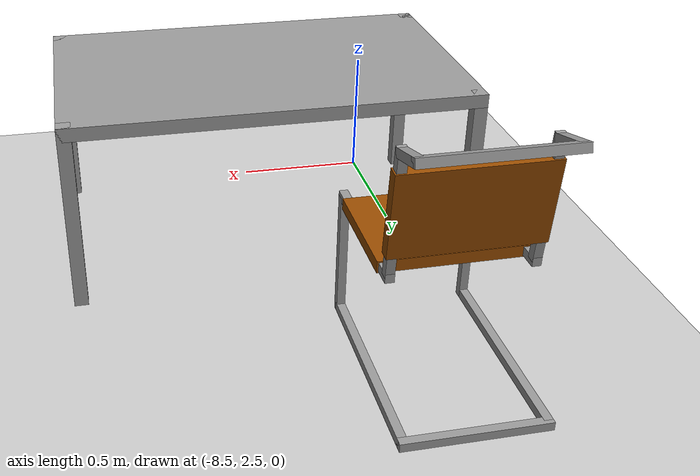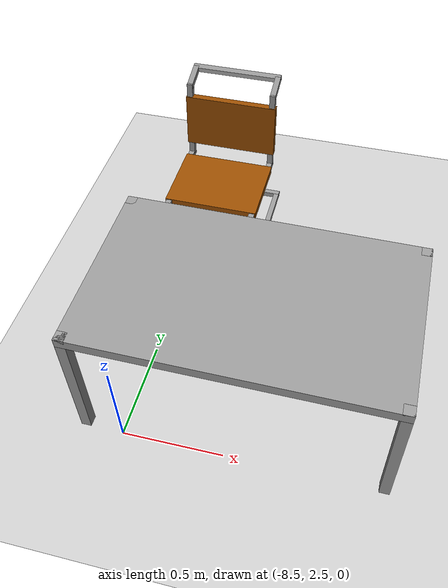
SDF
<sdf version="1.6">
 <world name="default">
  <model name="ground_plane">
   <static>1</static>
   <link name="link">
    <collision name="collision">
     <geometry><plane><normal>0 0 1</normal><size>100 100</size></plane></geometry>
     <surface><friction><ode><mu>100</mu><mu2>50</mu2></ode></friction></surface>
    </collision>
    <visual name="visual">
     <cast_shadows>0</cast_shadows>
     <geometry><plane><normal>0 0 1</normal><size>100 100</size></plane></geometry>
     <material>
      <script><uri>file://media/materials/scripts/gazebo.material</uri><name>Gazebo/Grey</name></script>
     </material>
    </visual>
   </link>
  </model>
  <model name="dining_table">
   <link name="link_0">
    <pose>0 0 0.675 0 -0 0</pose>
    <inertial>
     <mass>1</mass>
     <inertia>
      <ixx>0.166667</ixx>
      <ixy>0</ixy>
      <ixz>0</ixz>
      <iyy>0.166667</iyy>
      <iyz>0</iyz>
      <izz>0.166667</izz>
     </inertia>
    </inertial>
    <visual name="visual">
     <geometry><box><size>1.5 0.9 0.05</size></box></geometry>
     <material>
      <lighting>1</lighting>
      <script><uri>file://media/materials/scripts/gazebo.material</uri><name>Gazebo/Grey</name></script>
      <shader type="pixel"><normal_map>__default__</normal_map></shader>
      <ambient>1 1 1 1</ambient>
      <diffuse>0.7 0.7 0.7 1</diffuse>
      <specular>0.01 0.01 0.01 1</specular>
      <emissive>0 0 0 1</emissive>
     </material>
    </visual>
    <collision name="collision">
     <geometry><box><size>1.5 0.9 0.05</size></box></geometry>
     <surface>
      <friction>
       <ode><mu>1</mu><mu2>1</mu2><fdir1>0 0 0</fdir1><slip1>0</slip1><slip2>0</slip2></ode>
       <torsional>
        <coefficient>1</coefficient>
        <patch_radius>0</patch_radius>
        <surface_radius>0</surface_radius>
        <use_patch_radius>1</use_patch_radius>
        <ode><slip>0</slip></ode>
       </torsional>
      </friction>
      <bounce><restitution_coefficient>0</restitution_coefficient><threshold>1e+06</threshold></bounce>
      <contact>
       <collide_without_contact>0</collide_without_contact>
       <collide_without_contact_bitmask>1</collide_without_contact_bitmask>
       <collide_bitmask>1</collide_bitmask>
       <ode>
        <soft_cfm>0</soft_cfm>
        <soft_erp>0.2</soft_erp>
        <kp>1e+13</kp>
        <kd>1</kd>
        <max_vel>0.01</max_vel>
        <min_depth>0</min_depth>
       </ode>
       <bullet>
        <split_impulse>1</split_impulse>
        <split_impulse_penetration_threshold>-0.01</split_impulse_penetration_threshold>
        <soft_cfm>0</soft_cfm>
        <soft_erp>0.2</soft_erp>
        <kp>1e+13</kp>
        <kd>1</kd>
       </bullet>
      </contact>
     </surface>
    </collision>
   </link>
   <link name="link_1">
    <pose>-0.725 -0.425 0.35 0 -0 0</pose>
    <inertial>
     <mass>1</mass>
     <inertia>
      <ixx>0.166667</ixx>
      <ixy>0</ixy>
      <ixz>0</ixz>
      <iyy>0.166667</iyy>
      <iyz>0</iyz>
      <izz>0.166667</izz>
     </inertia>
    </inertial>
    <visual name="visual">
     <geometry><box><size>0.05 0.05 0.7</size></box></geometry>
     <material>
      <lighting>1</lighting>
      <script><uri>file://media/materials/scripts/gazebo.material</uri><name>Gazebo/Grey</name></script>
      <shader type="pixel"><normal_map>__default__</normal_map></shader>
      <ambient>1 1 1 1</ambient>
      <diffuse>0.7 0.7 0.7 1</diffuse>
      <specular>0.01 0.01 0.01 1</specular>
      <emissive>0 0 0 1</emissive>
     </material>
    </visual>
    <collision name="collision">
     <geometry><box><size>0.05 0.05 0.7</size></box></geometry>
     <surface>
      <friction>
       <ode><mu>1</mu><mu2>1</mu2><fdir1>0 0 0</fdir1><slip1>0</slip1><slip2>0</slip2></ode>
       <torsional>
        <coefficient>1</coefficient>
        <patch_radius>0</patch_radius>
        <surface_radius>0</surface_radius>
        <use_patch_radius>1</use_patch_radius>
        <ode><slip>0</slip></ode>
       </torsional>
      </friction>
      <bounce><restitution_coefficient>0</restitution_coefficient><threshold>1e+06</threshold></bounce>
      <contact>
       <collide_without_contact>0</collide_without_contact>
       <collide_without_contact_bitmask>1</collide_without_contact_bitmask>
       <collide_bitmask>1</collide_bitmask>
       <ode>
        <soft_cfm>0</soft_cfm>
        <soft_erp>0.2</soft_erp>
        <kp>1e+13</kp>
        <kd>1</kd>
        <max_vel>0.01</max_vel>
        <min_depth>0</min_depth>
       </ode>
       <bullet>
        <split_impulse>1</split_impulse>
        <split_impulse_penetration_threshold>-0.01</split_impulse_penetration_threshold>
        <soft_cfm>0</soft_cfm>
        <soft_erp>0.2</soft_erp>
        <kp>1e+13</kp>
        <kd>1</kd>
       </bullet>
      </contact>
     </surface>
    </collision>
   </link>
   <link name="link_1_clone">
    <pose>-0.725 0.425 0.35 0 -0 0</pose>
    <inertial>
     <mass>1</mass>
     <inertia>
      <ixx>0.166667</ixx>
      <ixy>0</ixy>
      <ixz>0</ixz>
      <iyy>0.166667</iyy>
      <iyz>0</iyz>
      <izz>0.166667</izz>
     </inertia>
    </inertial>
    <visual name="visual">
     <geometry><box><size>0.05 0.05 0.7</size></box></geometry>
     <material>
      <lighting>1</lighting>
      <script><uri>file://media/materials/scripts/gazebo.material</uri><name>Gazebo/Grey</name></script>
      <shader type="pixel"><normal_map>__default__</normal_map></shader>
      <ambient>1 1 1 1</ambient>
      <diffuse>0.7 0.7 0.7 1</diffuse>
      <specular>0.01 0.01 0.01 1</specular>
      <emissive>0 0 0 1</emissive>
     </material>
    </visual>
    <collision name="collision">
     <geometry><box><size>0.05 0.05 0.7</size></box></geometry>
     <surface>
      <friction>
       <ode><mu>1</mu><mu2>1</mu2><fdir1>0 0 0</fdir1><slip1>0</slip1><slip2>0</slip2></ode>
       <torsional>
        <coefficient>1</coefficient>
        <patch_radius>0</patch_radius>
        <surface_radius>0</surface_radius>
        <use_patch_radius>1</use_patch_radius>
        <ode><slip>0</slip></ode>
       </torsional>
      </friction>
      <bounce><restitution_coefficient>0</restitution_coefficient><threshold>1e+06</threshold></bounce>
      <contact>
       <collide_without_contact>0</collide_without_contact>
       <collide_without_contact_bitmask>1</collide_without_contact_bitmask>
       <collide_bitmask>1</collide_bitmask>
       <ode>
        <soft_cfm>0</soft_cfm>
        <soft_erp>0.2</soft_erp>
        <kp>1e+13</kp>
        <kd>1</kd>
        <max_vel>0.01</max_vel>
        <min_depth>0</min_depth>
       </ode>
       <bullet>
        <split_impulse>1</split_impulse>
        <split_impulse_penetration_threshold>-0.01</split_impulse_penetration_threshold>
        <soft_cfm>0</soft_cfm>
        <soft_erp>0.2</soft_erp>
        <kp>1e+13</kp>
        <kd>1</kd>
       </bullet>
      </contact>
     </surface>
    </collision>
   </link>
   <link name="link_1_clone_0">
    <pose>0.725 0.425 0.35 0 -0 0</pose>
    <inertial>
     <mass>1</mass>
     <inertia>
      <ixx>0.166667</ixx>
      <ixy>0</ixy>
      <ixz>0</ixz>
      <iyy>0.166667</iyy>
      <iyz>0</iyz>
      <izz>0.166667</izz>
     </inertia>
    </inertial>
    <visual name="visual">
     <geometry><box><size>0.05 0.05 0.7</size></box></geometry>
     <material>
      <lighting>1</lighting>
      <script><uri>file://media/materials/scripts/gazebo.material</uri><name>Gazebo/Grey</name></script>
      <shader type="pixel"><normal_map>__default__</normal_map></shader>
      <ambient>1 1 1 1</ambient>
      <diffuse>0.7 0.7 0.7 1</diffuse>
      <specular>0.01 0.01 0.01 1</specular>
      <emissive>0 0 0 1</emissive>
     </material>
    </visual>
    <collision name="collision">
     <geometry><box><size>0.05 0.05 0.7</size></box></geometry>
     <surface>
      <friction>
       <ode><mu>1</mu><mu2>1</mu2><fdir1>0 0 0</fdir1><slip1>0</slip1><slip2>0</slip2></ode>
       <torsional>
        <coefficient>1</coefficient>
        <patch_radius>0</patch_radius>
        <surface_radius>0</surface_radius>
        <use_patch_radius>1</use_patch_radius>
        <ode><slip>0</slip></ode>
       </torsional>
      </friction>
      <bounce><restitution_coefficient>0</restitution_coefficient><threshold>1e+06</threshold></bounce>
      <contact>
       <collide_without_contact>0</collide_without_contact>
       <collide_without_contact_bitmask>1</collide_without_contact_bitmask>
       <collide_bitmask>1</collide_bitmask>
       <ode>
        <soft_cfm>0</soft_cfm>
        <soft_erp>0.2</soft_erp>
        <kp>1e+13</kp>
        <kd>1</kd>
        <max_vel>0.01</max_vel>
        <min_depth>0</min_depth>
       </ode>
       <bullet>
        <split_impulse>1</split_impulse>
        <split_impulse_penetration_threshold>-0.01</split_impulse_penetration_threshold>
        <soft_cfm>0</soft_cfm>
        <soft_erp>0.2</soft_erp>
        <kp>1e+13</kp>
        <kd>1</kd>
       </bullet>
      </contact>
     </surface>
    </collision>
   </link>
   <link name="link_1_clone_1">
    <pose>0.725 -0.425 0.35 0 -0 0</pose>
    <inertial>
     <mass>1</mass>
     <inertia>
      <ixx>0.166667</ixx>
      <ixy>0</ixy>
      <ixz>0</ixz>
      <iyy>0.166667</iyy>
      <iyz>0</iyz>
      <izz>0.166667</izz>
     </inertia>
    </inertial>
    <visual name="visual">
     <geometry><box><size>0.05 0.05 0.7</size></box></geometry>
     <material>
      <lighting>1</lighting>
      <script><uri>file://media/materials/scripts/gazebo.material</uri><name>Gazebo/Grey</name></script>
      <shader type="pixel"><normal_map>__default__</normal_map></shader>
      <ambient>1 1 1 1</ambient>
      <diffuse>0.7 0.7 0.7 1</diffuse>
      <specular>0.01 0.01 0.01 1</specular>
      <emissive>0 0 0 1</emissive>
     </material>
    </visual>
    <collision name="collision">
     <geometry><box><size>0.05 0.05 0.7</size></box></geometry>
     <surface>
      <friction>
       <ode><mu>1</mu><mu2>1</mu2><fdir1>0 0 0</fdir1><slip1>0</slip1><slip2>0</slip2></ode>
       <torsional>
        <coefficient>1</coefficient>
        <patch_radius>0</patch_radius>
        <surface_radius>0</surface_radius>
        <use_patch_radius>1</use_patch_radius>
        <ode><slip>0</slip></ode>
       </torsional>
      </friction>
      <bounce><restitution_coefficient>0</restitution_coefficient><threshold>1e+06</threshold></bounce>
      <contact>
       <collide_without_contact>0</collide_without_contact>
       <collide_without_contact_bitmask>1</collide_without_contact_bitmask>
       <collide_bitmask>1</collide_bitmask>
       <ode>
        <soft_cfm>0</soft_cfm>
        <soft_erp>0.2</soft_erp>
        <kp>1e+13</kp>
        <kd>1</kd>
        <max_vel>0.01</max_vel>
        <min_depth>0</min_depth>
       </ode>
       <bullet>
        <split_impulse>1</split_impulse>
        <split_impulse_penetration_threshold>-0.01</split_impulse_penetration_threshold>
        <soft_cfm>0</soft_cfm>
        <soft_erp>0.2</soft_erp>
        <kp>1e+13</kp>
        <kd>1</kd>
       </bullet>
      </contact>
     </surface>
    </collision>
   </link>
   <joint name="link_0_JOINT_1" type="fixed">
    <parent>link_0</parent>
    <child>link_1</child>
    <physics>
     <ode><limit><cfm>0</cfm><erp>0.2</erp></limit><suspension><cfm>0</cfm><erp>0.2</erp></suspension></ode>
    </physics>
   </joint>
   <joint name="link_0_JOINT_2" type="fixed">
    <parent>link_0</parent>
    <child>link_1_clone</child>
    <physics>
     <ode><limit><cfm>0</cfm><erp>0.2</erp></limit><suspension><cfm>0</cfm><erp>0.2</erp></suspension></ode>
    </physics>
   </joint>
   <joint name="link_0_JOINT_3" type="fixed">
    <parent>link_0</parent>
    <child>link_1_clone_1</child>
    <physics>
     <ode><limit><cfm>0</cfm><erp>0.2</erp></limit><suspension><cfm>0</cfm><erp>0.2</erp></suspension></ode>
    </physics>
   </joint>
   <joint name="link_0_JOINT_4" type="fixed">
    <parent>link_0</parent>
    <child>link_1_clone_0</child>
    <physics>
     <ode><limit><cfm>0</cfm><erp>0.2</erp></limit><suspension><cfm>0</cfm><erp>0.2</erp></suspension></ode>
    </physics>
   </joint>
   <static>0</static>
   <pose>-7.96362 2.94723 -1e-06 -3e-06 -0 -0.002588</pose>
  </model>
  <model name="side_chair_2">
   <link name="link_3">
    <pose>0.475 0 0.46 0 -0 0</pose>
    <inertial>
     <mass>1</mass>
     <inertia>
      <ixx>0.166667</ixx>
      <ixy>0</ixy>
      <ixz>0</ixz>
      <iyy>0.166667</iyy>
      <iyz>0</iyz>
      <izz>0.166667</izz>
     </inertia>
    </inertial>
    <visual name="visual">
     <geometry><box><size>0.39 0.5 0.04</size></box></geometry>
     <material>
      <lighting>1</lighting>
      <script><uri>file://media/materials/scripts/gazebo.material</uri><name>Gazebo/Grey</name></script>
      <shader type="pixel"><normal_map>__default__</normal_map></shader>
      <ambient>0.6 0.3 0 1</ambient>
      <diffuse>0.7 0.7 0.7 1</diffuse>
      <specular>0.01 0.01 0.01 1</specular>
      <emissive>0 0 0 1</emissive>
     </material>
    </visual>
    <collision name="collision">
     <geometry><box><size>0.39 0.5 0.04</size></box></geometry>
     <surface>
      <friction>
       <ode><mu>1</mu><mu2>1</mu2><fdir1>0 0 0</fdir1><slip1>0</slip1><slip2>0</slip2></ode>
       <torsional>
        <coefficient>1</coefficient>
        <patch_radius>0</patch_radius>
        <surface_radius>0</surface_radius>
        <use_patch_radius>1</use_patch_radius>
        <ode><slip>0</slip></ode>
       </torsional>
      </friction>
      <bounce><restitution_coefficient>0</restitution_coefficient><threshold>1e+06</threshold></bounce>
      <contact>
       <collide_without_contact>0</collide_without_contact>
       <collide_without_contact_bitmask>1</collide_without_contact_bitmask>
       <collide_bitmask>1</collide_bitmask>
       <ode>
        <soft_cfm>0</soft_cfm>
        <soft_erp>0.2</soft_erp>
        <kp>1e+13</kp>
        <kd>1</kd>
        <max_vel>0.01</max_vel>
        <min_depth>0</min_depth>
       </ode>
       <bullet>
        <split_impulse>1</split_impulse>
        <split_impulse_penetration_threshold>-0.01</split_impulse_penetration_threshold>
        <soft_cfm>0</soft_cfm>
        <soft_erp>0.2</soft_erp>
        <kp>1e+13</kp>
        <kd>1</kd>
       </bullet>
      </contact>
     </surface>
    </collision>
   </link>
   <link name="link_3_clone">
    <pose>0.21 0 0.68 0 1.4739 0</pose>
    <inertial>
     <mass>0.748385</mass>
     <inertia>
      <ixx>0.0150301</ixx>
      <ixy>0</ixy>
      <ixz>0</ixz>
      <iyy>0.0053689</iyy>
      <iyz>0</iyz>
      <izz>0.0202867</izz>
     </inertia>
    </inertial>
    <visual name="visual">
     <geometry><box><size>0.29 0.5 0.04</size></box></geometry>
     <material>
      <lighting>1</lighting>
      <script><uri>file://media/materials/scripts/gazebo.material</uri><name>Gazebo/Grey</name></script>
      <shader type="pixel"><normal_map>__default__</normal_map></shader>
      <ambient>0.6 0.3 0 1</ambient>
      <diffuse>0.7 0.7 0.7 1</diffuse>
      <specular>0.01 0.01 0.01 1</specular>
      <emissive>0 0 0 1</emissive>
     </material>
    </visual>
    <collision name="collision">
     <geometry><box><size>0.29 0.5 0.04</size></box></geometry>
     <surface>
      <friction>
       <ode><mu>1</mu><mu2>1</mu2><fdir1>0 0 0</fdir1><slip1>0</slip1><slip2>0</slip2></ode>
       <torsional>
        <coefficient>1</coefficient>
        <patch_radius>0</patch_radius>
        <surface_radius>0</surface_radius>
        <use_patch_radius>1</use_patch_radius>
        <ode><slip>0</slip></ode>
       </torsional>
      </friction>
      <bounce><restitution_coefficient>0</restitution_coefficient><threshold>1e+06</threshold></bounce>
      <contact>
       <collide_without_contact>0</collide_without_contact>
       <collide_without_contact_bitmask>1</collide_without_contact_bitmask>
       <collide_bitmask>1</collide_bitmask>
       <ode>
        <soft_cfm>0</soft_cfm>
        <soft_erp>0.2</soft_erp>
        <kp>1e+13</kp>
        <kd>1</kd>
        <max_vel>0.01</max_vel>
        <min_depth>0</min_depth>
       </ode>
       <bullet>
        <split_impulse>1</split_impulse>
        <split_impulse_penetration_threshold>-0.01</split_impulse_penetration_threshold>
        <soft_cfm>0</soft_cfm>
        <soft_erp>0.2</soft_erp>
        <kp>1e+13</kp>
        <kd>1</kd>
       </bullet>
      </contact>
     </surface>
    </collision>
   </link>
   <link name="link_3_clone_0">
    <pose>0.475 -0.23 0.46 0 -0 0</pose>
    <inertial>
     <mass>1.33571</mass>
     <inertia>
      <ixx>0.00020036</ixx>
      <ixy>0</ixy>
      <ixz>0</ixz>
      <iyy>0.0303055</iyy>
      <iyz>0</iyz>
      <izz>0.0303055</izz>
     </inertia>
    </inertial>
    <visual name="visual">
     <geometry><box><size>0.520926 0.03 0.03</size></box></geometry>
     <material>
      <lighting>1</lighting>
      <script><uri>file://media/materials/scripts/gazebo.material</uri><name>Gazebo/Grey</name></script>
      <shader type="pixel"><normal_map>__default__</normal_map></shader>
      <ambient>0.75 0.75 0.75 1</ambient>
      <diffuse>0.7 0.7 0.7 1</diffuse>
      <specular>0.01 0.01 0.01 1</specular>
      <emissive>0 0 0 1</emissive>
     </material>
    </visual>
    <collision name="collision">
     <geometry><box><size>0.520926 0.03 0.03</size></box></geometry>
     <surface>
      <friction>
       <ode><mu>1</mu><mu2>1</mu2><fdir1>0 0 0</fdir1><slip1>0</slip1><slip2>0</slip2></ode>
       <torsional>
        <coefficient>1</coefficient>
        <patch_radius>0</patch_radius>
        <surface_radius>0</surface_radius>
        <use_patch_radius>1</use_patch_radius>
        <ode><slip>0</slip></ode>
       </torsional>
      </friction>
      <bounce><restitution_coefficient>0</restitution_coefficient><threshold>1e+06</threshold></bounce>
      <contact>
       <collide_without_contact>0</collide_without_contact>
       <collide_without_contact_bitmask>1</collide_without_contact_bitmask>
       <collide_bitmask>1</collide_bitmask>
       <ode>
        <soft_cfm>0</soft_cfm>
        <soft_erp>0.2</soft_erp>
        <kp>1e+13</kp>
        <kd>1</kd>
        <max_vel>0.01</max_vel>
        <min_depth>0</min_depth>
       </ode>
       <bullet>
        <split_impulse>1</split_impulse>
        <split_impulse_penetration_threshold>-0.01</split_impulse_penetration_threshold>
        <soft_cfm>0</soft_cfm>
        <soft_erp>0.2</soft_erp>
        <kp>1e+13</kp>
        <kd>1</kd>
       </bullet>
      </contact>
     </surface>
    </collision>
   </link>
   <link name="link_3_clone_0_clone">
    <pose>0.72 -0.23 0.23 0 -0 0</pose>
    <inertial>
     <mass>1.33571</mass>
     <inertia>
      <ixx>0.00020036</ixx>
      <ixy>0</ixy>
      <ixz>0</ixz>
      <iyy>0.0303055</iyy>
      <iyz>0</iyz>
      <izz>0.0303055</izz>
     </inertia>
    </inertial>
    <visual name="visual">
     <geometry><box><size>0.03 0.03 0.46</size></box></geometry>
     <material>
      <lighting>1</lighting>
      <script><uri>file://media/materials/scripts/gazebo.material</uri><name>Gazebo/Grey</name></script>
      <shader type="pixel"><normal_map>__default__</normal_map></shader>
      <ambient>0.75 0.75 0.75 1</ambient>
      <diffuse>0.7 0.7 0.7 1</diffuse>
      <specular>0.01 0.01 0.01 1</specular>
      <emissive>0 0 0 1</emissive>
     </material>
    </visual>
    <collision name="collision">
     <geometry><box><size>0.03 0.03 0.46</size></box></geometry>
     <surface>
      <friction>
       <ode><mu>1</mu><mu2>1</mu2><fdir1>0 0 0</fdir1><slip1>0</slip1><slip2>0</slip2></ode>
       <torsional>
        <coefficient>1</coefficient>
        <patch_radius>0</patch_radius>
        <surface_radius>0</surface_radius>
        <use_patch_radius>1</use_patch_radius>
        <ode><slip>0</slip></ode>
       </torsional>
      </friction>
      <bounce><restitution_coefficient>0</restitution_coefficient><threshold>1e+06</threshold></bounce>
      <contact>
       <collide_without_contact>0</collide_without_contact>
       <collide_without_contact_bitmask>1</collide_without_contact_bitmask>
       <collide_bitmask>1</collide_bitmask>
       <ode>
        <soft_cfm>0</soft_cfm>
        <soft_erp>0.2</soft_erp>
        <kp>1e+13</kp>
        <kd>1</kd>
        <max_vel>0.01</max_vel>
        <min_depth>0</min_depth>
       </ode>
       <bullet>
        <split_impulse>1</split_impulse>
        <split_impulse_penetration_threshold>-0.01</split_impulse_penetration_threshold>
        <soft_cfm>0</soft_cfm>
        <soft_erp>0.2</soft_erp>
        <kp>1e+13</kp>
        <kd>1</kd>
       </bullet>
      </contact>
     </surface>
    </collision>
   </link>
   <link name="link_3_clone_0_clone_0">
    <pose>0.36 -0.23 0.015 0 -0 0</pose>
    <inertial>
     <mass>1.84718</mass>
     <inertia>
      <ixx>0.00027708</ixx>
      <ixy>0</ixy>
      <ixz>0</ixz>
      <iyy>0.0800255</iyy>
      <iyz>0</iyz>
      <izz>0.0800255</izz>
     </inertia>
    </inertial>
    <visual name="visual">
     <geometry><box><size>0.7204 0.03 0.03</size></box></geometry>
     <material>
      <lighting>1</lighting>
      <script><uri>file://media/materials/scripts/gazebo.material</uri><name>Gazebo/Grey</name></script>
      <shader type="pixel"><normal_map>__default__</normal_map></shader>
      <ambient>0.75 0.75 0.75 1</ambient>
      <diffuse>0.7 0.7 0.7 1</diffuse>
      <specular>0.01 0.01 0.01 1</specular>
      <emissive>0 0 0 1</emissive>
     </material>
    </visual>
    <collision name="collision">
     <geometry><box><size>0.7204 0.03 0.03</size></box></geometry>
     <surface>
      <friction>
       <ode><mu>1</mu><mu2>1</mu2><fdir1>0 0 0</fdir1><slip1>0</slip1><slip2>0</slip2></ode>
       <torsional>
        <coefficient>1</coefficient>
        <patch_radius>0</patch_radius>
        <surface_radius>0</surface_radius>
        <use_patch_radius>1</use_patch_radius>
        <ode><slip>0</slip></ode>
       </torsional>
      </friction>
      <bounce><restitution_coefficient>0</restitution_coefficient><threshold>1e+06</threshold></bounce>
      <contact>
       <collide_without_contact>0</collide_without_contact>
       <collide_without_contact_bitmask>1</collide_without_contact_bitmask>
       <collide_bitmask>1</collide_bitmask>
       <ode>
        <soft_cfm>0</soft_cfm>
        <soft_erp>0.2</soft_erp>
        <kp>1e+13</kp>
        <kd>1</kd>
        <max_vel>0.01</max_vel>
        <min_depth>0</min_depth>
       </ode>
       <bullet>
        <split_impulse>1</split_impulse>
        <split_impulse_penetration_threshold>-0.01</split_impulse_penetration_threshold>
        <soft_cfm>0</soft_cfm>
        <soft_erp>0.2</soft_erp>
        <kp>1e+13</kp>
        <kd>1</kd>
       </bullet>
      </contact>
     </surface>
    </collision>
   </link>
   <link name="link_3_clone_0_clone_0_clone">
    <pose>0.13 -0.23 0.9 0 0.262585 0</pose>
    <inertial>
     <mass>0.359555</mass>
     <inertia>
      <ixx>5.393e-05</ixx>
      <ixy>0</ixy>
      <ixz>0</ixz>
      <iyy>0.00061614</iyy>
      <iyz>0</iyz>
      <izz>0.00061614</izz>
     </inertia>
    </inertial>
    <visual name="visual">
     <geometry><box><size>0.140226 0.03 0.03</size></box></geometry>
     <material>
      <lighting>1</lighting>
      <script><uri>file://media/materials/scripts/gazebo.material</uri><name>Gazebo/Grey</name></script>
      <shader type="pixel"><normal_map>__default__</normal_map></shader>
      <ambient>0.75 0.75 0.75 1</ambient>
      <diffuse>0.7 0.7 0.7 1</diffuse>
      <specular>0.01 0.01 0.01 1</specular>
      <emissive>0 0 0 1</emissive>
     </material>
    </visual>
    <collision name="collision">
     <geometry><box><size>0.140226 0.03 0.03</size></box></geometry>
     <surface>
      <friction>
       <ode><mu>1</mu><mu2>1</mu2><fdir1>0 0 0</fdir1><slip1>0</slip1><slip2>0</slip2></ode>
       <torsional>
        <coefficient>1</coefficient>
        <patch_radius>0</patch_radius>
        <surface_radius>0</surface_radius>
        <use_patch_radius>1</use_patch_radius>
        <ode><slip>0</slip></ode>
       </torsional>
      </friction>
      <bounce><restitution_coefficient>0</restitution_coefficient><threshold>1e+06</threshold></bounce>
      <contact>
       <collide_without_contact>0</collide_without_contact>
       <collide_without_contact_bitmask>1</collide_without_contact_bitmask>
       <collide_bitmask>1</collide_bitmask>
       <ode>
        <soft_cfm>0</soft_cfm>
        <soft_erp>0.2</soft_erp>
        <kp>1e+13</kp>
        <kd>1</kd>
        <max_vel>0.01</max_vel>
        <min_depth>0</min_depth>
       </ode>
       <bullet>
        <split_impulse>1</split_impulse>
        <split_impulse_penetration_threshold>-0.01</split_impulse_penetration_threshold>
        <soft_cfm>0</soft_cfm>
        <soft_erp>0.2</soft_erp>
        <kp>1e+13</kp>
        <kd>1</kd>
       </bullet>
      </contact>
     </surface>
    </collision>
   </link>
   <link name="link_3_clone_0_clone_0_clone_0">
    <pose>0.36 0.23 0.015 0 -0 0</pose>
    <inertial>
     <mass>1.84718</mass>
     <inertia>
      <ixx>0.00027708</ixx>
      <ixy>0</ixy>
      <ixz>0</ixz>
      <iyy>0.0800255</iyy>
      <iyz>0</iyz>
      <izz>0.0800255</izz>
     </inertia>
    </inertial>
    <visual name="visual">
     <geometry><box><size>0.7204 0.03 0.03</size></box></geometry>
     <material>
      <lighting>1</lighting>
      <script><uri>file://media/materials/scripts/gazebo.material</uri><name>Gazebo/Grey</name></script>
      <shader type="pixel"><normal_map>__default__</normal_map></shader>
      <ambient>0.75 0.75 0.75 1</ambient>
      <diffuse>0.7 0.7 0.7 1</diffuse>
      <specular>0.01 0.01 0.01 1</specular>
      <emissive>0 0 0 1</emissive>
     </material>
    </visual>
    <collision name="collision">
     <geometry><box><size>0.7204 0.03 0.03</size></box></geometry>
     <surface>
      <friction>
       <ode><mu>1</mu><mu2>1</mu2><fdir1>0 0 0</fdir1><slip1>0</slip1><slip2>0</slip2></ode>
       <torsional>
        <coefficient>1</coefficient>
        <patch_radius>0</patch_radius>
        <surface_radius>0</surface_radius>
        <use_patch_radius>1</use_patch_radius>
        <ode><slip>0</slip></ode>
       </torsional>
      </friction>
      <bounce><restitution_coefficient>0</restitution_coefficient><threshold>1e+06</threshold></bounce>
      <contact>
       <collide_without_contact>0</collide_without_contact>
       <collide_without_contact_bitmask>1</collide_without_contact_bitmask>
       <collide_bitmask>1</collide_bitmask>
       <ode>
        <soft_cfm>0</soft_cfm>
        <soft_erp>0.2</soft_erp>
        <kp>1e+13</kp>
        <kd>1</kd>
        <max_vel>0.01</max_vel>
        <min_depth>0</min_depth>
       </ode>
       <bullet>
        <split_impulse>1</split_impulse>
        <split_impulse_penetration_threshold>-0.01</split_impulse_penetration_threshold>
        <soft_cfm>0</soft_cfm>
        <soft_erp>0.2</soft_erp>
        <kp>1e+13</kp>
        <kd>1</kd>
       </bullet>
      </contact>
     </surface>
    </collision>
   </link>
   <link name="link_3_clone_0_clone_0_clone_clone">
    <pose>0.13 0.23 0.9 0 0.262585 0</pose>
    <inertial>
     <mass>0.359555</mass>
     <inertia>
      <ixx>5.393e-05</ixx>
      <ixy>0</ixy>
      <ixz>0</ixz>
      <iyy>0.00061614</iyy>
      <iyz>0</iyz>
      <izz>0.00061614</izz>
     </inertia>
    </inertial>
    <visual name="visual">
     <geometry><box><size>0.140226 0.03 0.03</size></box></geometry>
     <material>
      <lighting>1</lighting>
      <script><uri>file://media/materials/scripts/gazebo.material</uri><name>Gazebo/Grey</name></script>
      <shader type="pixel"><normal_map>__default__</normal_map></shader>
      <ambient>0.75 0.75 0.75 1</ambient>
      <diffuse>0.7 0.7 0.7 1</diffuse>
      <specular>0.01 0.01 0.01 1</specular>
      <emissive>0 0 0 1</emissive>
     </material>
    </visual>
    <collision name="collision">
     <geometry><box><size>0.140226 0.03 0.03</size></box></geometry>
     <surface>
      <friction>
       <ode><mu>1</mu><mu2>1</mu2><fdir1>0 0 0</fdir1><slip1>0</slip1><slip2>0</slip2></ode>
       <torsional>
        <coefficient>1</coefficient>
        <patch_radius>0</patch_radius>
        <surface_radius>0</surface_radius>
        <use_patch_radius>1</use_patch_radius>
        <ode><slip>0</slip></ode>
       </torsional>
      </friction>
      <bounce><restitution_coefficient>0</restitution_coefficient><threshold>1e+06</threshold></bounce>
      <contact>
       <collide_without_contact>0</collide_without_contact>
       <collide_without_contact_bitmask>1</collide_without_contact_bitmask>
       <collide_bitmask>1</collide_bitmask>
       <ode>
        <soft_cfm>0</soft_cfm>
        <soft_erp>0.2</soft_erp>
        <kp>1e+13</kp>
        <kd>1</kd>
        <max_vel>0.01</max_vel>
        <min_depth>0</min_depth>
       </ode>
       <bullet>
        <split_impulse>1</split_impulse>
        <split_impulse_penetration_threshold>-0.01</split_impulse_penetration_threshold>
        <soft_cfm>0</soft_cfm>
        <soft_erp>0.2</soft_erp>
        <kp>1e+13</kp>
        <kd>1</kd>
       </bullet>
      </contact>
     </surface>
    </collision>
   </link>
   <link name="link_3_clone_0_clone_1">
    <pose>0.475 0.23 0.46 0 -0 0</pose>
    <inertial>
     <mass>1.33571</mass>
     <inertia>
      <ixx>0.00020036</ixx>
      <ixy>0</ixy>
      <ixz>0</ixz>
      <iyy>0.0303055</iyy>
      <iyz>0</iyz>
      <izz>0.0303055</izz>
     </inertia>
    </inertial>
    <visual name="visual">
     <geometry><box><size>0.520926 0.03 0.03</size></box></geometry>
     <material>
      <lighting>1</lighting>
      <script><uri>file://media/materials/scripts/gazebo.material</uri><name>Gazebo/Grey</name></script>
      <shader type="pixel"><normal_map>__default__</normal_map></shader>
      <ambient>0.75 0.75 0.75 1</ambient>
      <diffuse>0.7 0.7 0.7 1</diffuse>
      <specular>0.01 0.01 0.01 1</specular>
      <emissive>0 0 0 1</emissive>
     </material>
    </visual>
    <collision name="collision">
     <geometry><box><size>0.520926 0.03 0.03</size></box></geometry>
     <surface>
      <friction>
       <ode><mu>1</mu><mu2>1</mu2><fdir1>0 0 0</fdir1><slip1>0</slip1><slip2>0</slip2></ode>
       <torsional>
        <coefficient>1</coefficient>
        <patch_radius>0</patch_radius>
        <surface_radius>0</surface_radius>
        <use_patch_radius>1</use_patch_radius>
        <ode><slip>0</slip></ode>
       </torsional>
      </friction>
      <bounce><restitution_coefficient>0</restitution_coefficient><threshold>1e+06</threshold></bounce>
      <contact>
       <collide_without_contact>0</collide_without_contact>
       <collide_without_contact_bitmask>1</collide_without_contact_bitmask>
       <collide_bitmask>1</collide_bitmask>
       <ode>
        <soft_cfm>0</soft_cfm>
        <soft_erp>0.2</soft_erp>
        <kp>1e+13</kp>
        <kd>1</kd>
        <max_vel>0.01</max_vel>
        <min_depth>0</min_depth>
       </ode>
       <bullet>
        <split_impulse>1</split_impulse>
        <split_impulse_penetration_threshold>-0.01</split_impulse_penetration_threshold>
        <soft_cfm>0</soft_cfm>
        <soft_erp>0.2</soft_erp>
        <kp>1e+13</kp>
        <kd>1</kd>
       </bullet>
      </contact>
     </surface>
    </collision>
   </link>
   <link name="link_3_clone_0_clone_clone">
    <pose>0.72 0.23 0.23 0 -0 0</pose>
    <inertial>
     <mass>1.33571</mass>
     <inertia>
      <ixx>0.00020036</ixx>
      <ixy>0</ixy>
      <ixz>0</ixz>
      <iyy>0.0303055</iyy>
      <iyz>0</iyz>
      <izz>0.0303055</izz>
     </inertia>
    </inertial>
    <visual name="visual">
     <geometry><box><size>0.03 0.03 0.46</size></box></geometry>
     <material>
      <lighting>1</lighting>
      <script><uri>file://media/materials/scripts/gazebo.material</uri><name>Gazebo/Grey</name></script>
      <shader type="pixel"><normal_map>__default__</normal_map></shader>
      <ambient>0.75 0.75 0.75 1</ambient>
      <diffuse>0.7 0.7 0.7 1</diffuse>
      <specular>0.01 0.01 0.01 1</specular>
      <emissive>0 0 0 1</emissive>
     </material>
    </visual>
    <collision name="collision">
     <geometry><box><size>0.03 0.03 0.46</size></box></geometry>
     <surface>
      <friction>
       <ode><mu>1</mu><mu2>1</mu2><fdir1>0 0 0</fdir1><slip1>0</slip1><slip2>0</slip2></ode>
       <torsional>
        <coefficient>1</coefficient>
        <patch_radius>0</patch_radius>
        <surface_radius>0</surface_radius>
        <use_patch_radius>1</use_patch_radius>
        <ode><slip>0</slip></ode>
       </torsional>
      </friction>
      <bounce><restitution_coefficient>0</restitution_coefficient><threshold>1e+06</threshold></bounce>
      <contact>
       <collide_without_contact>0</collide_without_contact>
       <collide_without_contact_bitmask>1</collide_without_contact_bitmask>
       <collide_bitmask>1</collide_bitmask>
       <ode>
        <soft_cfm>0</soft_cfm>
        <soft_erp>0.2</soft_erp>
        <kp>1e+13</kp>
        <kd>1</kd>
        <max_vel>0.01</max_vel>
        <min_depth>0</min_depth>
       </ode>
       <bullet>
        <split_impulse>1</split_impulse>
        <split_impulse_penetration_threshold>-0.01</split_impulse_penetration_threshold>
        <soft_cfm>0</soft_cfm>
        <soft_erp>0.2</soft_erp>
        <kp>1e+13</kp>
        <kd>1</kd>
       </bullet>
      </contact>
     </surface>
    </collision>
   </link>
   <link name="link_3_clone_clone">
    <pose>0.21 -0.23 0.68 0 1.4739 0</pose>
    <inertial>
     <mass>1.13912</mass>
     <inertia>
      <ixx>0.00017087</ixx>
      <ixy>0</ixy>
      <ixz>0</ixz>
      <iyy>0.0188203</iyy>
      <iyz>0</iyz>
      <izz>0.0188203</izz>
     </inertia>
    </inertial>
    <visual name="visual">
     <geometry><box><size>0.44 0.03 0.03</size></box></geometry>
     <material>
      <lighting>1</lighting>
      <script><uri>file://media/materials/scripts/gazebo.material</uri><name>Gazebo/Grey</name></script>
      <shader type="pixel"><normal_map>__default__</normal_map></shader>
      <ambient>0.75 0.75 0.75 1</ambient>
      <diffuse>0.7 0.7 0.7 1</diffuse>
      <specular>0.01 0.01 0.01 1</specular>
      <emissive>0 0 0 1</emissive>
     </material>
    </visual>
    <collision name="collision">
     <geometry><box><size>0.444254 0.03 0.03</size></box></geometry>
     <surface>
      <friction>
       <ode><mu>1</mu><mu2>1</mu2><fdir1>0 0 0</fdir1><slip1>0</slip1><slip2>0</slip2></ode>
       <torsional>
        <coefficient>1</coefficient>
        <patch_radius>0</patch_radius>
        <surface_radius>0</surface_radius>
        <use_patch_radius>1</use_patch_radius>
        <ode><slip>0</slip></ode>
       </torsional>
      </friction>
      <bounce><restitution_coefficient>0</restitution_coefficient><threshold>1e+06</threshold></bounce>
      <contact>
       <collide_without_contact>0</collide_without_contact>
       <collide_without_contact_bitmask>1</collide_without_contact_bitmask>
       <collide_bitmask>1</collide_bitmask>
       <ode>
        <soft_cfm>0</soft_cfm>
        <soft_erp>0.2</soft_erp>
        <kp>1e+13</kp>
        <kd>1</kd>
        <max_vel>0.01</max_vel>
        <min_depth>0</min_depth>
       </ode>
       <bullet>
        <split_impulse>1</split_impulse>
        <split_impulse_penetration_threshold>-0.01</split_impulse_penetration_threshold>
        <soft_cfm>0</soft_cfm>
        <soft_erp>0.2</soft_erp>
        <kp>1e+13</kp>
        <kd>1</kd>
       </bullet>
      </contact>
     </surface>
    </collision>
   </link>
   <link name="link_3_clone_clone_clone">
    <pose>0.21 0.23 0.68 0 1.4739 0</pose>
    <inertial>
     <mass>1.13912</mass>
     <inertia>
      <ixx>0.00017087</ixx>
      <ixy>0</ixy>
      <ixz>0</ixz>
      <iyy>0.0188203</iyy>
      <iyz>0</iyz>
      <izz>0.0188203</izz>
     </inertia>
    </inertial>
    <visual name="visual">
     <geometry><box><size>0.44 0.03 0.03</size></box></geometry>
     <material>
      <lighting>1</lighting>
      <script><uri>file://media/materials/scripts/gazebo.material</uri><name>Gazebo/Grey</name></script>
      <shader type="pixel"><normal_map>__default__</normal_map></shader>
      <ambient>0.75 0.75 0.75 1</ambient>
      <diffuse>0.7 0.7 0.7 1</diffuse>
      <specular>0.01 0.01 0.01 1</specular>
      <emissive>0 0 0 1</emissive>
     </material>
    </visual>
    <collision name="collision">
     <geometry><box><size>0.444254 0.03 0.03</size></box></geometry>
     <surface>
      <friction>
       <ode><mu>1</mu><mu2>1</mu2><fdir1>0 0 0</fdir1><slip1>0</slip1><slip2>0</slip2></ode>
       <torsional>
        <coefficient>1</coefficient>
        <patch_radius>0</patch_radius>
        <surface_radius>0</surface_radius>
        <use_patch_radius>1</use_patch_radius>
        <ode><slip>0</slip></ode>
       </torsional>
      </friction>
      <bounce><restitution_coefficient>0</restitution_coefficient><threshold>1e+06</threshold></bounce>
      <contact>
       <collide_without_contact>0</collide_without_contact>
       <collide_without_contact_bitmask>1</collide_without_contact_bitmask>
       <collide_bitmask>1</collide_bitmask>
       <ode>
        <soft_cfm>0</soft_cfm>
        <soft_erp>0.2</soft_erp>
        <kp>1e+13</kp>
        <kd>1</kd>
        <max_vel>0.01</max_vel>
        <min_depth>0</min_depth>
       </ode>
       <bullet>
        <split_impulse>1</split_impulse>
        <split_impulse_penetration_threshold>-0.01</split_impulse_penetration_threshold>
        <soft_cfm>0</soft_cfm>
        <soft_erp>0.2</soft_erp>
        <kp>1e+13</kp>
        <kd>1</kd>
       </bullet>
      </contact>
     </surface>
    </collision>
   </link>
   <link name="link_4">
    <pose>0 0 0.015 0 -0 0</pose>
    <inertial>
     <mass>1.05988</mass>
     <inertia>
      <ixx>0.0239014</ixx>
      <ixy>0</ixy>
      <ixz>0</ixz>
      <iyy>0.00015898</iyy>
      <iyz>0</iyz>
      <izz>0.0239014</izz>
     </inertia>
    </inertial>
    <visual name="visual">
     <geometry><box><size>0.03 0.49 0.03</size></box></geometry>
     <material>
      <lighting>1</lighting>
      <script><uri>file://media/materials/scripts/gazebo.material</uri><name>Gazebo/Grey</name></script>
      <shader type="pixel"><normal_map>__default__</normal_map></shader>
      <ambient>0.75 0.75 0.75 1</ambient>
      <diffuse>0.7 0.7 0.7 1</diffuse>
      <specular>0.01 0.01 0.01 1</specular>
      <emissive>0 0 0 1</emissive>
     </material>
    </visual>
    <collision name="collision">
     <geometry><box><size>0.03 0.49 0.03</size></box></geometry>
     <surface>
      <friction>
       <ode><mu>1</mu><mu2>1</mu2><fdir1>0 0 0</fdir1><slip1>0</slip1><slip2>0</slip2></ode>
       <torsional>
        <coefficient>1</coefficient>
        <patch_radius>0</patch_radius>
        <surface_radius>0</surface_radius>
        <use_patch_radius>1</use_patch_radius>
        <ode><slip>0</slip></ode>
       </torsional>
      </friction>
      <bounce><restitution_coefficient>0</restitution_coefficient><threshold>1e+06</threshold></bounce>
      <contact>
       <collide_without_contact>0</collide_without_contact>
       <collide_without_contact_bitmask>1</collide_without_contact_bitmask>
       <collide_bitmask>1</collide_bitmask>
       <ode>
        <soft_cfm>0</soft_cfm>
        <soft_erp>0.2</soft_erp>
        <kp>1e+13</kp>
        <kd>1</kd>
        <max_vel>0.01</max_vel>
        <min_depth>0</min_depth>
       </ode>
       <bullet>
        <split_impulse>1</split_impulse>
        <split_impulse_penetration_threshold>-0.01</split_impulse_penetration_threshold>
        <soft_cfm>0</soft_cfm>
        <soft_erp>0.2</soft_erp>
        <kp>1e+13</kp>
        <kd>1</kd>
       </bullet>
      </contact>
     </surface>
    </collision>
   </link>
   <link name="link_4_clone">
    <pose>0.061734 0 0.918349 0 0.262585 0</pose>
    <inertial>
     <mass>1.05988</mass>
     <inertia>
      <ixx>0.0239014</ixx>
      <ixy>0</ixy>
      <ixz>0</ixz>
      <iyy>0.00015898</iyy>
      <iyz>0</iyz>
      <izz>0.0239014</izz>
     </inertia>
    </inertial>
    <visual name="visual">
     <geometry><box><size>0.03 0.49 0.03</size></box></geometry>
     <material>
      <lighting>1</lighting>
      <script><uri>file://media/materials/scripts/gazebo.material</uri><name>Gazebo/Grey</name></script>
      <shader type="pixel"><normal_map>__default__</normal_map></shader>
      <ambient>0.75 0.75 0.75 1</ambient>
      <diffuse>0.7 0.7 0.7 1</diffuse>
      <specular>0.01 0.01 0.01 1</specular>
      <emissive>0 0 0 1</emissive>
     </material>
    </visual>
    <collision name="collision">
     <geometry><box><size>0.03 0.49 0.03</size></box></geometry>
     <surface>
      <friction>
       <ode><mu>1</mu><mu2>1</mu2><fdir1>0 0 0</fdir1><slip1>0</slip1><slip2>0</slip2></ode>
       <torsional>
        <coefficient>1</coefficient>
        <patch_radius>0</patch_radius>
        <surface_radius>0</surface_radius>
        <use_patch_radius>1</use_patch_radius>
        <ode><slip>0</slip></ode>
       </torsional>
      </friction>
      <bounce><restitution_coefficient>0</restitution_coefficient><threshold>1e+06</threshold></bounce>
      <contact>
       <collide_without_contact>0</collide_without_contact>
       <collide_without_contact_bitmask>1</collide_without_contact_bitmask>
       <collide_bitmask>1</collide_bitmask>
       <ode>
        <soft_cfm>0</soft_cfm>
        <soft_erp>0.2</soft_erp>
        <kp>1e+13</kp>
        <kd>1</kd>
        <max_vel>0.01</max_vel>
        <min_depth>0</min_depth>
       </ode>
       <bullet>
        <split_impulse>1</split_impulse>
        <split_impulse_penetration_threshold>-0.01</split_impulse_penetration_threshold>
        <soft_cfm>0</soft_cfm>
        <soft_erp>0.2</soft_erp>
        <kp>1e+13</kp>
        <kd>1</kd>
       </bullet>
      </contact>
     </surface>
    </collision>
   </link>
   <joint name="link_3_clone_0_JOINT_10" type="fixed">
    <parent>link_3_clone_0</parent>
    <child>link_3</child>
    <physics>
     <ode><limit><cfm>0</cfm><erp>0.2</erp></limit><suspension><cfm>0</cfm><erp>0.2</erp></suspension></ode>
    </physics>
   </joint>
   <joint name="link_3_clone_0_JOINT_6" type="fixed">
    <parent>link_3_clone_0</parent>
    <child>link_3_clone_clone</child>
    <physics>
     <ode><limit><cfm>0</cfm><erp>0.2</erp></limit><suspension><cfm>0</cfm><erp>0.2</erp></suspension></ode>
    </physics>
   </joint>
   <joint name="link_3_clone_0_clone_0_JOINT_4" type="fixed">
    <parent>link_3_clone_0_clone_0</parent>
    <child>link_3_clone_0_clone</child>
    <physics>
     <ode><limit><cfm>0</cfm><erp>0.2</erp></limit><suspension><cfm>0</cfm><erp>0.2</erp></suspension></ode>
    </physics>
   </joint>
   <joint name="link_3_clone_0_clone_0_clone_0_JOINT_11" type="fixed">
    <parent>link_3_clone_0_clone_0_clone_0</parent>
    <child>link_3_clone_0_clone_clone</child>
    <physics>
     <ode><limit><cfm>0</cfm><erp>0.2</erp></limit><suspension><cfm>0</cfm><erp>0.2</erp></suspension></ode>
    </physics>
   </joint>
   <joint name="link_3_clone_0_clone_0_clone_JOINT_8" type="fixed">
    <parent>link_3_clone_0_clone_0_clone</parent>
    <child>link_4_clone</child>
    <physics>
     <ode><limit><cfm>0</cfm><erp>0.2</erp></limit><suspension><cfm>0</cfm><erp>0.2</erp></suspension></ode>
    </physics>
   </joint>
   <joint name="link_3_clone_0_clone_0_clone_clone_JOINT_15" type="fixed">
    <parent>link_3_clone_0_clone_0_clone_clone</parent>
    <child>link_4_clone</child>
    <physics>
     <ode><limit><cfm>0</cfm><erp>0.2</erp></limit><suspension><cfm>0</cfm><erp>0.2</erp></suspension></ode>
    </physics>
   </joint>
   <joint name="link_3_clone_0_clone_1_JOINT_13" type="fixed">
    <parent>link_3_clone_0_clone_1</parent>
    <child>link_3_clone_clone_clone</child>
    <physics>
     <ode><limit><cfm>0</cfm><erp>0.2</erp></limit><suspension><cfm>0</cfm><erp>0.2</erp></suspension></ode>
    </physics>
   </joint>
   <joint name="link_3_clone_0_clone_1_JOINT_17" type="fixed">
    <parent>link_3_clone_0_clone_1</parent>
    <child>link_3</child>
    <physics>
     <ode><limit><cfm>0</cfm><erp>0.2</erp></limit><suspension><cfm>0</cfm><erp>0.2</erp></suspension></ode>
    </physics>
   </joint>
   <joint name="link_3_clone_0_clone_JOINT_5" type="fixed">
    <parent>link_3_clone_0_clone</parent>
    <child>link_3_clone_0</child>
    <physics>
     <ode><limit><cfm>0</cfm><erp>0.2</erp></limit><suspension><cfm>0</cfm><erp>0.2</erp></suspension></ode>
    </physics>
   </joint>
   <joint name="link_3_clone_0_clone_clone_JOINT_12" type="fixed">
    <parent>link_3_clone_0_clone_clone</parent>
    <child>link_3_clone_0_clone_1</child>
    <physics>
     <ode><limit><cfm>0</cfm><erp>0.2</erp></limit><suspension><cfm>0</cfm><erp>0.2</erp></suspension></ode>
    </physics>
   </joint>
   <joint name="link_3_clone_clone_JOINT_7" type="fixed">
    <parent>link_3_clone_clone</parent>
    <child>link_3_clone_0_clone_0_clone</child>
    <physics>
     <ode><limit><cfm>0</cfm><erp>0.2</erp></limit><suspension><cfm>0</cfm><erp>0.2</erp></suspension></ode>
    </physics>
   </joint>
   <joint name="link_3_clone_clone_JOINT_9" type="fixed">
    <parent>link_3_clone_clone</parent>
    <child>link_3_clone</child>
    <physics>
     <ode><limit><cfm>0</cfm><erp>0.2</erp></limit><suspension><cfm>0</cfm><erp>0.2</erp></suspension></ode>
    </physics>
   </joint>
   <joint name="link_3_clone_clone_clone_JOINT_14" type="fixed">
    <parent>link_3_clone_clone_clone</parent>
    <child>link_3_clone_0_clone_0_clone_clone</child>
    <physics>
     <ode><limit><cfm>0</cfm><erp>0.2</erp></limit><suspension><cfm>0</cfm><erp>0.2</erp></suspension></ode>
    </physics>
   </joint>
   <joint name="link_3_clone_clone_clone_JOINT_16" type="fixed">
    <parent>link_3_clone_clone_clone</parent>
    <child>link_3_clone</child>
    <physics>
     <ode><limit><cfm>0</cfm><erp>0.2</erp></limit><suspension><cfm>0</cfm><erp>0.2</erp></suspension></ode>
    </physics>
   </joint>
   <joint name="link_4_JOINT_2" type="fixed">
    <parent>link_4</parent>
    <child>link_3_clone_0_clone_0_clone_0</child>
    <physics>
     <ode><limit><cfm>0</cfm><erp>0.2</erp></limit><suspension><cfm>0</cfm><erp>0.2</erp></suspension></ode>
    </physics>
   </joint>
   <joint name="link_4_JOINT_3" type="fixed">
    <parent>link_4</parent>
    <child>link_3_clone_0_clone_0</child>
    <physics>
     <ode><limit><cfm>0</cfm><erp>0.2</erp></limit><suspension><cfm>0</cfm><erp>0.2</erp></suspension></ode>
    </physics>
   </joint>
   <static>0</static>
   <pose>-8.37237 4.31415 -2.9e-05 3e-06 -3.1e-05 -1.57069</pose>
  </model>
 </world>
</sdf>
